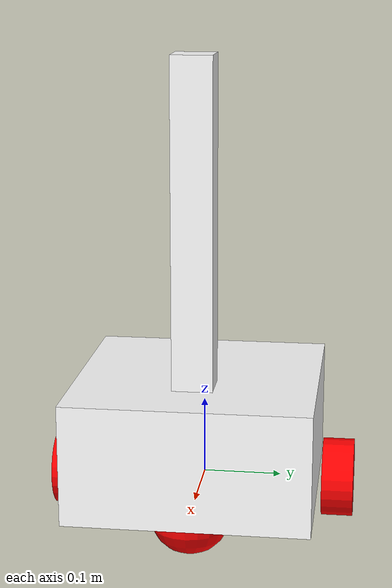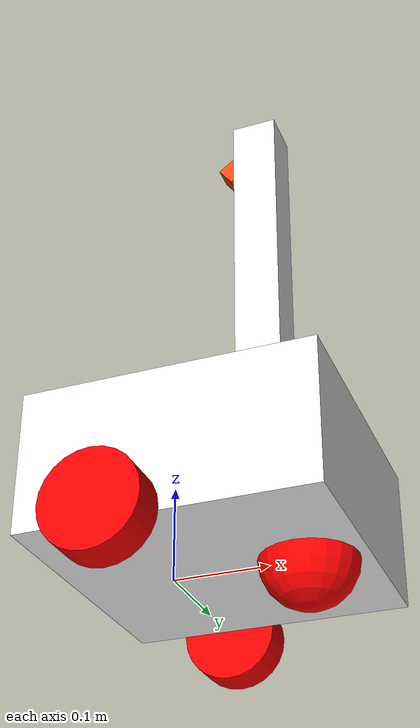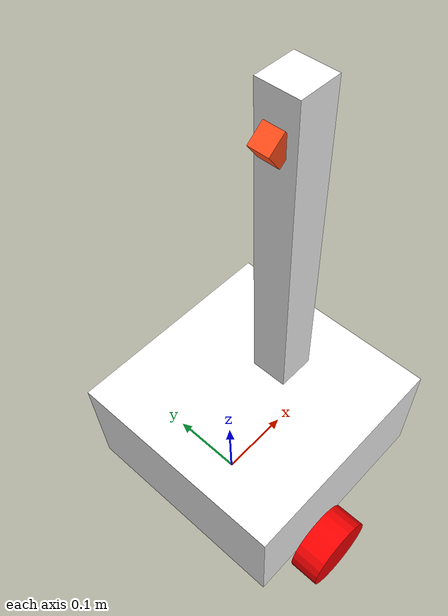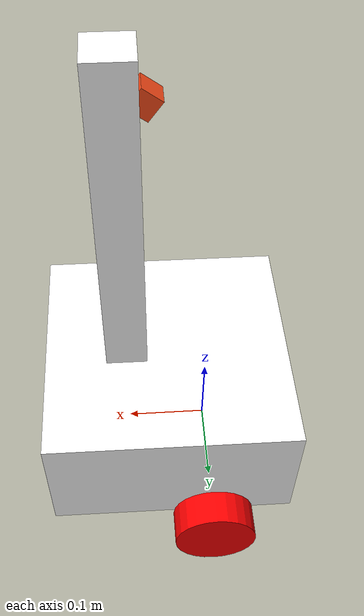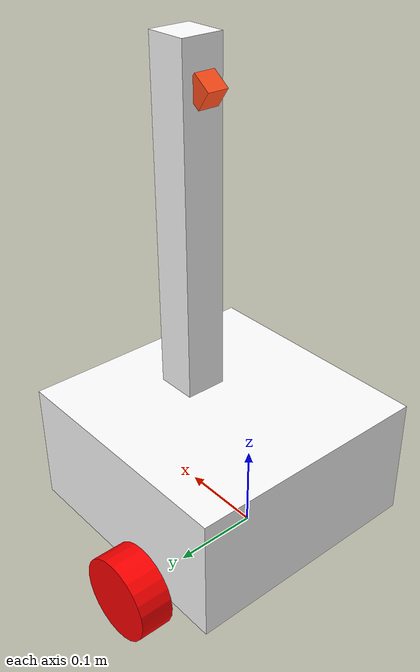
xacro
<?xml version="1.0"?>
<robot xmlns:xacro="http://www.ros.org/wiki/xacro">

	<xacro:include filename="inertia.xacro" />

	<material name="white">
		<color rgba="1 1 1 1" />
	</material>

	<material name="black">
		<color rgba="0 0 0 1" />
	</material>

	<material name="red">
		<color rgba="1 0.3 0.1 1" />
	</material>

	<material name="orange">
		<color rgba="1 0 0 1" />
	</material>

	<link name="base_link"></link>

	<joint name="chassis_joint" type="fixed">
		<parent link="base_link" />
		<child link="chassis" />
		<origin xyz="-0.1 0 0" />
	</joint>

	<link name="chassis">
		<visual>
			<origin xyz="0.15 0 0.075" />
			<geometry>
				<box size="0.3 0.3 0.15" />
			</geometry>
			<material name="white" />
		</visual>
		<collision>
			<origin xyz="0.15 0 0.075" />
			<geometry>
				<box size="0.3 0.3 0.15" />
			</geometry>
		</collision>
		<xacro:inertial_box mass="1" x="0.3" y="0.3" z="0.15">
			<origin xyz="0.15 0 0.075" rpy="0 0 0" />
		</xacro:inertial_box>
	</link>

	<gazebo reference="chasis">
		<material>Gazebo/White</material>
	</gazebo>

	<joint name="left_wheel_joint" type="continuous">
		<parent link="base_link" />
		<child link="left_wheel" />
		<origin xyz="0 0.175 0" rpy="-${pi/2} 0 0" />
		<axis xyz="0 0 1" />
	</joint>

	<link name="left_wheel">
		<visual>
			<geometry>
				<cylinder radius="0.05" length="0.04" />
			</geometry>
			<material name="orange" />
		</visual>
		<collision>
			<geometry>
				<cylinder radius="0.05" length="0.04" />
			</geometry>
		</collision>
		<xacro:inertial_cylinder mass="0.1" length="0.04" radius="0.05">
			<origin xyz="0 0 0" rpy="0 0 0" />
		</xacro:inertial_cylinder>
	</link>

	<gazebo reference="left_wheel">
		<material>Gazebo/Orange</material>
	</gazebo>

	<joint name="right_wheel_joint" type="continuous">
		<parent link="base_link" />
		<child link="right_wheel" />
		<origin xyz="0 -0.175 0" rpy="${pi/2} 0 0" />
		<axis xyz="0 0 -1" />
	</joint>

	<link name="right_wheel">
		<visual>
			<geometry>
				<cylinder radius="0.05" length="0.04" />
			</geometry>
			<material name="orange" />
		</visual>
		<collision>
			<geometry>
				<cylinder radius="0.05" length="0.04" />
			</geometry>
		</collision>
		<xacro:inertial_cylinder mass="0.1" length="0.04" radius="0.05">
			<origin xyz="0 0 0" rpy="0 0 0" />
		</xacro:inertial_cylinder>
	</link>

	<gazebo reference="right_wheel">
		<material>Gazebo/Orange</material>
	</gazebo>

	<joint name="caster_wheel_joint" type="fixed">
		<parent link="chassis" />
		<child link="caster_wheel" />
		<origin xyz="0.24 0 0" />
	</joint>

	<link name="caster_wheel">
		<visual>
			<geometry>
				<sphere radius="0.05" />
			</geometry>
			<material name="orange" />
		</visual>
		<collision>
			<geometry>
				<sphere radius="0.05" />
			</geometry>
		</collision>
		<xacro:inertial_sphere mass="0.2" radius="0.05">
			<origin xyz="0 0 0" rpy="0 0 0" />
		</xacro:inertial_sphere>
	</link>

	<gazebo reference="caster_wheel">
		<material>Gazebo/Blue</material>
		<mu>0.001</mu>
		<mu2>0.001</mu2>
	</gazebo>

	<joint name="topbody_joint" type="fixed">
		<parent link="base_link" />
		<child link="topbody" />
		<origin xyz="0.1 0 0.15" />
	</joint>

	<link name="topbody">
		<visual>
			<origin xyz="0 0 0.15" />
			<geometry>
				<box size="0.05 0.05 0.5" />
			</geometry>
			<material name="white" />
		</visual>
		<collision>
			<origin xyz="0 0 0.15" />
			<geometry>
				<box size="0.05 0.05 0.5" />
			</geometry>
		</collision>
		<xacro:inertial_box mass="0.05" x="0.05" y="0.05" z="0.5">
			<origin xyz="0 0 0.15" rpy="0 0 0" />
		</xacro:inertial_box>
	</link>

	<gazebo reference="topbody">
		<material>Gazebo/Gray</material>
	</gazebo>

	<joint name="camera_joint" type="fixed">
		<axis xyz="0 1 0" />
		<origin xyz="0.17 0 0.5" rpy="0 ${pi/5} ${pi}" />
		<parent link="chassis" />
		<child link="camera_link" />
	</joint>

	<link name="camera_link">
		<collision>
			<origin xyz="0 0 0" rpy="0 0 0" />
			<geometry>
				<box size="0.025 0.025 0.025" />
			</geometry>
		</collision>

		<visual>
			<origin xyz="0 0 0" rpy="0 0 0" />
			<geometry>
				<box size="0.025 0.025 0.025" />
			</geometry>
			<material name="red" />
		</visual>

		<inertial>
			<mass value="1e-5" />
			<origin xyz="0 0 0" rpy="0 0 0" />
			<inertia ixx="1e-6" ixy="0" ixz="0" iyy="1e-6" iyz="0" izz="1e-6" />
		</inertial>
	</link>

	<gazebo reference="camera_link">
		<material>Gazebo/Red</material>
	</gazebo>

</robot>

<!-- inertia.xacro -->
<robot xmlns:xacro="http://www.ros.org/wiki/xacro" >

    <xacro:macro name="inertial_sphere" params="mass radius *origin">
        <inertial>
            <xacro:insert_block name="origin"/>
            <mass value="${mass}" />
            <inertia ixx="${(2/5) * mass * (radius*radius)}" ixy="0.0" ixz="0.0"
                    iyy="${(2/5) * mass * (radius*radius)}" iyz="0.0"
                    izz="${(2/5) * mass * (radius*radius)}" />
        </inertial>
    </xacro:macro>

    <xacro:macro name="inertial_box" params="mass x y z *origin">
        <inertial>
            <xacro:insert_block name="origin"/>
            <mass value="${mass}" />
            <inertia ixx="${(1/12) * mass * (y*y+z*z)}" ixy="0.0" ixz="0.0"
                    iyy="${(1/12) * mass * (x*x+z*z)}" iyz="0.0"
                    izz="${(1/12) * mass * (x*x+y*y)}" />
        </inertial>
    </xacro:macro>

    <xacro:macro name="inertial_cylinder" params="mass length radius *origin">
        <inertial>
            <xacro:insert_block name="origin"/>
            <mass value="${mass}" />
            <inertia ixx="${(1/12) * mass * (3*radius*radius + length*length)}" ixy="0.0" ixz="0.0"
                    iyy="${(1/12) * mass * (3*radius*radius + length*length)}" iyz="0.0"
                    izz="${(1/2) * mass * (radius*radius)}" />
        </inertial>
    </xacro:macro>

</robot>
